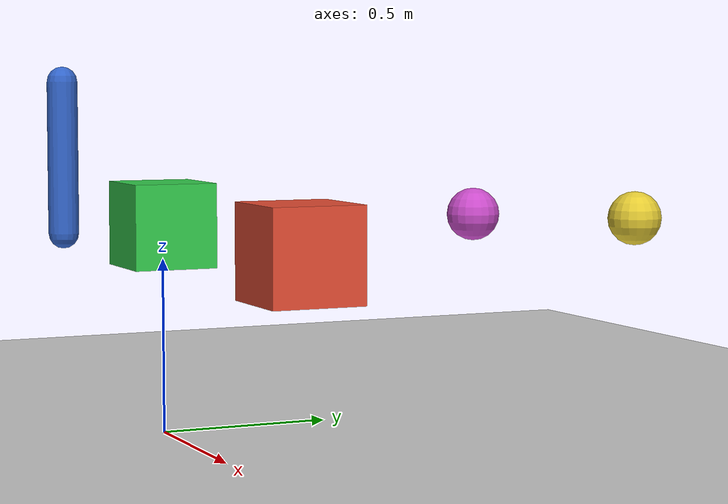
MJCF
<mujoco model="day2_joint_types">

    <compiler angle="degree"/>

    <!--
        Day 2 暂时关闭重力。
        今天研究的是 joint、qpos/qvel 和坐标变换，
        不希望 free body 自己往下掉。
    -->
    <option
        timestep="0.002"
        gravity="0 0 0"
    />

    <worldbody>

        <light
            name="top_light"
            pos="0 0 4"
            dir="0 0 -1"
        />

        <geom
            name="floor"
            type="plane"
            size="3 3 0.1"
            rgba="0.8 0.8 0.8 1"
        />

        <!-- 1. Hinge Joint                        -->

        <body
            name="hinge_body"
            pos="-1 0 1.0"
        >

            <joint
                name="hinge_joint"
                type="hinge"
                axis="0 1 0"
                limited="true"
                range="-90 90"
            />

            <geom
                name="hinge_geom"
                type="capsule"
                fromto="0 0 0  0 0 -0.5"
                size="0.05"
                mass="1"
                rgba="0.2 0.4 0.8 1"
            />

        </body>

        <!-- 2. Slide Joint                        -->

        <body
            name="slide_body"
            pos="0 0 0.6"
        >

            <joint
                name="slide_joint"
                type="slide"
                axis="1 0 0"
                limited="true"
                range="-0.4 0.4"
            />

            <geom
                name="slide_geom"
                type="box"
                size="0.12 0.12 0.12"
                mass="1"
                rgba="0.2 0.8 0.3 1"
            />

        </body>

        <!-- 3. Free Joint                         -->

        <body
            name="free_body"
            pos="1 0 0.6"
        >

            <freejoint
                name="free_joint"
            />

            <geom
                name="free_geom"
                type="box"
                size="0.12 0.12 0.12"
                mass="1"
                rgba="0.9 0.3 0.2 1"
            />

        </body>

        <!-- 4. Coordinate Frame Example           -->

        <body
            name="frame_parent"
            pos="0 1 0.6"
            euler="0 0 45"
        >

            <geom
                name="parent_geom"
                type="sphere"
                size="0.08"
                rgba="0.8 0.3 0.8 1"
            />

            <body
                name="frame_child"
                pos="0.5 0 0"
            >

                <geom
                    name="child_geom"
                    type="sphere"
                    size="0.08"
                    rgba="0.9 0.8 0.2 1"
                />

            </body>

        </body>

    </worldbody>

</mujoco>
